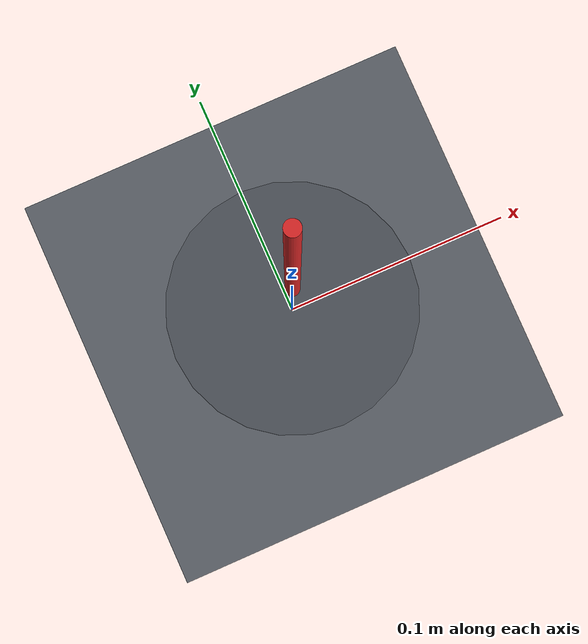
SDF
<?xml version="1.0" ?>
<sdf version="1.6">
  <world name="tactile_t1_threshold">
    <scene>
      <ambient>0.75 0.75 0.75 1</ambient>
      <background>0.92 0.92 0.96 1</background>
    </scene>

    <include>
      <uri>model://sun</uri>
    </include>

    <model name="t1_mount_base">
      <static>true</static>
      <pose>0 0 -0.03 0 0 0</pose>
      <link name="link">
        <collision name="collision">
          <geometry>
            <box>
              <size>0.18 0.18 0.04</size>
            </box>
          </geometry>
        </collision>
        <visual name="visual">
          <geometry>
            <box>
              <size>0.18 0.18 0.04</size>
            </box>
          </geometry>
          <material>
            <ambient>0.35 0.37 0.40 1</ambient>
            <diffuse>0.35 0.37 0.40 1</diffuse>
          </material>
        </visual>
      </link>
    </model>

    <model name="t1_alignment_ring">
      <static>true</static>
      <pose>0 0 0.005 0 0 0</pose>
      <link name="link">
        <collision name="collision">
          <geometry>
            <cylinder>
              <radius>0.055</radius>
              <length>0.01</length>
            </cylinder>
          </geometry>
        </collision>
        <visual name="visual">
          <geometry>
            <cylinder>
              <radius>0.055</radius>
              <length>0.01</length>
            </cylinder>
          </geometry>
          <material>
            <ambient>0.17 0.19 0.22 0.25</ambient>
            <diffuse>0.17 0.19 0.22 0.25</diffuse>
          </material>
        </visual>
      </link>
    </model>

    <model name="t1_force_axis_marker">
      <static>true</static>
      <pose>0 0 0.18 0 0 0</pose>
      <link name="link">
        <visual name="visual">
          <geometry>
            <cylinder>
              <radius>0.003</radius>
              <length>0.18</length>
            </cylinder>
          </geometry>
          <material>
            <ambient>0.85 0.15 0.15 1</ambient>
            <diffuse>0.85 0.15 0.15 1</diffuse>
          </material>
        </visual>
      </link>
    </model>
  </world>
</sdf>
